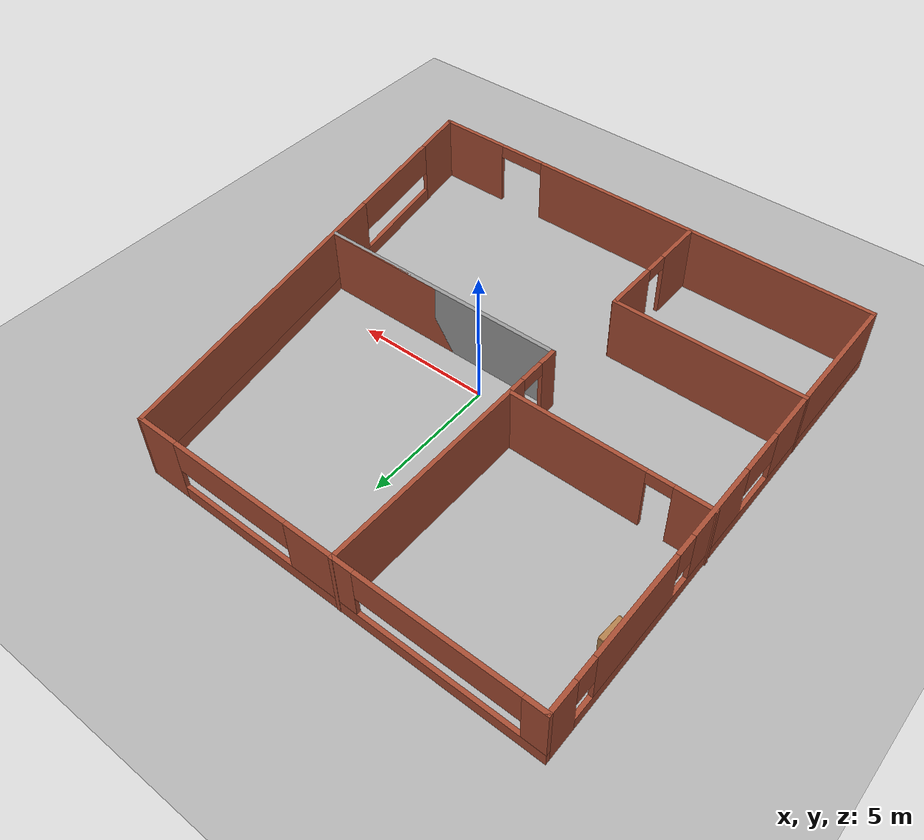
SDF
<sdf version="1.9">
 <world name="default">
  <gravity>0 0 -9.8</gravity>
  <magnetic_field>6e-06 2.3e-05 -4.2e-05</magnetic_field>
  <atmosphere type="adiabatic"/>
  <physics type="ode">
   <max_step_size>0.001</max_step_size>
   <real_time_factor>1</real_time_factor>
   <real_time_update_rate>1000</real_time_update_rate>
  </physics>
  <scene><ambient>0.4 0.4 0.4 1</ambient><background>0.7 0.7 0.7 1</background><shadows>true</shadows></scene>
  <model name="Dom">
   <pose>-0.232117 -0.096522 0 0 -0 0</pose>
   <link name="Wall_10">
    <collision name="Wall_10_Collision">
     <geometry><box><size>7 0.15 2.5</size></box></geometry>
     <pose>0 0 1.25 0 -0 0</pose>
    </collision>
    <visual name="Wall_10_Visual">
     <pose>0 0 1.25 0 -0 0</pose>
     <geometry><box><size>7 0.15 2.5</size></box></geometry>
     <material>
      <script><uri>file://media/materials/scripts/gazebo.material</uri><name>Gazebo/Bricks</name></script>
      <ambient>1 1 1 1</ambient>
     </material>
     <meta><layer>0</layer></meta>
    </visual>
    <pose>-5.49268 -4.10959 0 0 -0 0</pose>
    <inertial>
     <mass>1</mass>
     <inertia><ixx>1</ixx><ixy>0</ixy><ixz>0</ixz><iyy>1</iyy><iyz>0</iyz><izz>1</izz></inertia>
    </inertial>
   </link>
   <link name="Wall_11">
    <pose>-2.05603 -6.4096 0 0 0 -1.5708</pose>
    <visual name="Wall_11_Visual_0">
     <pose>-1.3422 0 1.25 0 -0 0</pose>
     <geometry><box><size>2.06559 0.15 2.5</size></box></geometry>
     <material>
      <script><uri>file://media/materials/scripts/gazebo.material</uri><name>Gazebo/Bricks</name></script>
      <ambient>1 1 1 1</ambient>
     </material>
     <meta><layer>0</layer></meta>
    </visual>
    <collision name="Wall_11_Collision_0">
     <geometry><box><size>2.06559 0.15 2.5</size></box></geometry>
     <pose>-1.3422 0 1.25 0 -0 0</pose>
    </collision>
    <visual name="Wall_11_Visual_1">
     <pose>1.4828 0 1.25 0 -0 0</pose>
     <geometry><box><size>1.78441 0.15 2.5</size></box></geometry>
     <material>
      <script><uri>file://media/materials/scripts/gazebo.material</uri><name>Gazebo/Bricks</name></script>
      <ambient>1 1 1 1</ambient>
     </material>
     <meta><layer>0</layer></meta>
    </visual>
    <collision name="Wall_11_Collision_1">
     <geometry><box><size>1.78441 0.15 2.5</size></box></geometry>
     <pose>1.4828 0 1.25 0 -0 0</pose>
    </collision>
    <visual name="Wall_11_Visual_2">
     <pose>0.140593 0 2.25 0 -0 0</pose>
     <geometry><box><size>0.9 0.15 0.5</size></box></geometry>
     <material>
      <script><uri>file://media/materials/scripts/gazebo.material</uri><name>Gazebo/Bricks</name></script>
      <ambient>1 1 1 1</ambient>
     </material>
     <meta><layer>0</layer></meta>
    </visual>
    <collision name="Wall_11_Collision_2">
     <geometry><box><size>0.9 0.15 0.5</size></box></geometry>
     <pose>0.140593 0 2.25 0 -0 0</pose>
    </collision>
    <inertial>
     <mass>1</mass>
     <inertia><ixx>1</ixx><ixy>0</ixy><ixz>0</ixz><iyy>1</iyy><iyz>0</iyz><izz>1</izz></inertia>
    </inertial>
   </link>
   <link name="Wall_13">
    <collision name="Wall_13_Collision">
     <geometry><box><size>9.5 0.15 2.5</size></box></geometry>
     <pose>0 0 1.25 0 -0 0</pose>
    </collision>
    <visual name="Wall_13_Visual">
     <pose>0 0 1.25 0 -0 0</pose>
     <geometry><box><size>9.5 0.15 2.5</size></box></geometry>
     <material>
      <script><uri>file://media/materials/scripts/gazebo.material</uri><name>Gazebo/Bricks</name></script>
      <ambient>1 1 1 1</ambient>
     </material>
     <meta><layer>0</layer></meta>
    </visual>
    <pose>2.83201 -0.959613 0 0 -0 0</pose>
    <inertial>
     <mass>1</mass>
     <inertia><ixx>1</ixx><ixy>0</ixy><ixz>0</ixz><iyy>1</iyy><iyz>0</iyz><izz>1</izz></inertia>
    </inertial>
   </link>
   <link name="Wall_14">
    <collision name="Wall_14_Collision">
     <geometry><box><size>9.5 0.15 2.5</size></box></geometry>
     <pose>0 0 1.25 0 -0 0</pose>
    </collision>
    <visual name="Wall_14_Visual">
     <pose>0 0 1.25 0 -0 0</pose>
     <geometry><box><size>9.5 0.15 2.5</size></box></geometry>
     <material>
      <script><uri>file://media/materials/scripts/gazebo.material</uri><name>Gazebo/Grey</name></script>
      <ambient>1 1 1 1</ambient>
     </material>
     <meta><layer>0</layer></meta>
    </visual>
    <pose>2.83201 -0.959613 0 0 -0 3.14159</pose>
    <inertial>
     <mass>1</mass>
     <inertia><ixx>1</ixx><ixy>0</ixy><ixz>0</ixz><iyy>1</iyy><iyz>0</iyz><izz>1</izz></inertia>
    </inertial>
   </link>
   <link name="Wall_15">
    <pose>-1.85066 0.090387 0 0 -0 1.5708</pose>
    <visual name="Wall_15_Visual_0">
     <pose>-0.773124 0 1.25 0 -0 0</pose>
     <geometry><box><size>0.703752 0.15 2.5</size></box></geometry>
     <material>
      <script><uri>file://media/materials/scripts/gazebo.material</uri><name>Gazebo/Bricks</name></script>
      <ambient>1 1 1 1</ambient>
     </material>
     <meta><layer>0</layer></meta>
    </visual>
    <collision name="Wall_15_Collision_0">
     <geometry><box><size>0.703752 0.15 2.5</size></box></geometry>
     <pose>-0.773124 0 1.25 0 -0 0</pose>
    </collision>
    <visual name="Wall_15_Visual_1">
     <pose>0.801876 0 1.25 0 -0 0</pose>
     <geometry><box><size>0.646248 0.15 2.5</size></box></geometry>
     <material>
      <script><uri>file://media/materials/scripts/gazebo.material</uri><name>Gazebo/Bricks</name></script>
      <ambient>1 1 1 1</ambient>
     </material>
     <meta><layer>0</layer></meta>
    </visual>
    <collision name="Wall_15_Collision_1">
     <geometry><box><size>0.646248 0.15 2.5</size></box></geometry>
     <pose>0.801876 0 1.25 0 -0 0</pose>
    </collision>
    <visual name="Wall_15_Visual_2">
     <pose>0.028752 0 2.25 0 -0 0</pose>
     <geometry><box><size>0.9 0.15 0.5</size></box></geometry>
     <material>
      <script><uri>file://media/materials/scripts/gazebo.material</uri><name>Gazebo/Bricks</name></script>
      <ambient>1 1 1 1</ambient>
     </material>
     <meta><layer>0</layer></meta>
    </visual>
    <collision name="Wall_15_Collision_2">
     <geometry><box><size>0.9 0.15 0.5</size></box></geometry>
     <pose>0.028752 0 2.25 0 -0 0</pose>
    </collision>
    <inertial>
     <mass>1</mass>
     <inertia><ixx>1</ixx><ixy>0</ixy><ixz>0</ixz><iyy>1</iyy><iyz>0</iyz><izz>1</izz></inertia>
    </inertial>
   </link>
   <link name="Wall_2">
    <pose>-1.48545 8.8 0 0 -0 3.14159</pose>
    <visual name="Wall_2_Visual_0">
     <pose>-6.70585 0 1.25 0 -0 0</pose>
     <geometry><box><size>1.5883 0.15 2.5</size></box></geometry>
     <material>
      <script><uri>file://media/materials/scripts/gazebo.material</uri><name>Gazebo/Bricks</name></script>
      <ambient>1 1 1 1</ambient>
     </material>
     <meta><layer>0</layer></meta>
    </visual>
    <collision name="Wall_2_Collision_0">
     <geometry><box><size>1.5883 0.15 2.5</size></box></geometry>
     <pose>-6.70585 0 1.25 0 -0 0</pose>
    </collision>
    <visual name="Wall_2_Visual_1">
     <pose>0.794151 0 0.25 0 -0 0</pose>
     <geometry><box><size>13.4117 0.15 0.5</size></box></geometry>
     <material>
      <script><uri>file://media/materials/scripts/gazebo.material</uri><name>Gazebo/Bricks</name></script>
      <ambient>1 1 1 1</ambient>
     </material>
     <meta><layer>0</layer></meta>
    </visual>
    <collision name="Wall_2_Collision_1">
     <geometry><box><size>13.4117 0.15 0.5</size></box></geometry>
     <pose>0.794151 0 0.25 0 -0 0</pose>
    </collision>
    <visual name="Wall_2_Visual_2">
     <pose>-0.160421 0 1.5 0 -0 0</pose>
     <geometry><box><size>2.52124 0.15 2</size></box></geometry>
     <material>
      <script><uri>file://media/materials/scripts/gazebo.material</uri><name>Gazebo/Bricks</name></script>
      <ambient>1 1 1 1</ambient>
     </material>
     <meta><layer>0</layer></meta>
    </visual>
    <collision name="Wall_2_Collision_2">
     <geometry><box><size>2.52124 0.15 2</size></box></geometry>
     <pose>-0.160421 0 1.5 0 -0 0</pose>
    </collision>
    <visual name="Wall_2_Visual_3">
     <pose>7.08941 0 1.5 0 -0 0</pose>
     <geometry><box><size>0.821169 0.15 2</size></box></geometry>
     <material>
      <script><uri>file://media/materials/scripts/gazebo.material</uri><name>Gazebo/Bricks</name></script>
      <ambient>1 1 1 1</ambient>
     </material>
     <meta><layer>0</layer></meta>
    </visual>
    <collision name="Wall_2_Collision_3">
     <geometry><box><size>0.821169 0.15 2</size></box></geometry>
     <pose>7.08941 0 1.5 0 -0 0</pose>
    </collision>
    <visual name="Wall_2_Visual_4">
     <pose>-3.66637 0 1.9 0 -0 0</pose>
     <geometry><box><size>4.49066 0.15 1.2</size></box></geometry>
     <material>
      <script><uri>file://media/materials/scripts/gazebo.material</uri><name>Gazebo/Bricks</name></script>
      <ambient>1 1 1 1</ambient>
     </material>
     <meta><layer>0</layer></meta>
    </visual>
    <collision name="Wall_2_Collision_4">
     <geometry><box><size>4.49066 0.15 1.2</size></box></geometry>
     <pose>-3.66637 0 1.9 0 -0 0</pose>
    </collision>
    <visual name="Wall_2_Visual_5">
     <pose>3.88951 0 1.9 0 -0 0</pose>
     <geometry><box><size>5.57863 0.15 1.2</size></box></geometry>
     <material>
      <script><uri>file://media/materials/scripts/gazebo.material</uri><name>Gazebo/Bricks</name></script>
      <ambient>1 1 1 1</ambient>
     </material>
     <meta><layer>0</layer></meta>
    </visual>
    <collision name="Wall_2_Collision_5">
     <geometry><box><size>5.57863 0.15 1.2</size></box></geometry>
     <pose>3.88951 0 1.9 0 -0 0</pose>
    </collision>
    <inertial>
     <mass>1</mass>
     <inertia><ixx>1</ixx><ixy>0</ixy><ixz>0</ixz><iyy>1</iyy><iyz>0</iyz><izz>1</izz></inertia>
    </inertial>
   </link>
   <link name="Wall_3">
    <pose>-8.91045 0 0 0 0 -1.5708</pose>
    <visual name="Wall_3_Visual_0">
     <pose>-8.27966 0 1.25 0 -0 0</pose>
     <geometry><box><size>1.19069 0.15 2.5</size></box></geometry>
     <material>
      <script><uri>file://media/materials/scripts/gazebo.material</uri><name>Gazebo/Bricks</name></script>
      <ambient>1 1 1 1</ambient>
     </material>
     <meta><layer>0</layer></meta>
    </visual>
    <collision name="Wall_3_Collision_0">
     <geometry><box><size>1.19069 0.15 2.5</size></box></geometry>
     <pose>-8.27966 0 1.25 0 -0 0</pose>
    </collision>
    <visual name="Wall_3_Visual_1">
     <pose>0.595344 0 0.25 0 -0 0</pose>
     <geometry><box><size>16.5593 0.15 0.5</size></box></geometry>
     <material>
      <script><uri>file://media/materials/scripts/gazebo.material</uri><name>Gazebo/Bricks</name></script>
      <ambient>1 1 1 1</ambient>
     </material>
     <meta><layer>0</layer></meta>
    </visual>
    <collision name="Wall_3_Collision_1">
     <geometry><box><size>16.5593 0.15 0.5</size></box></geometry>
     <pose>0.595344 0 0.25 0 -0 0</pose>
    </collision>
    <visual name="Wall_3_Visual_2">
     <pose>-4.98614 0 1.5 0 -0 0</pose>
     <geometry><box><size>3.79634 0.15 2</size></box></geometry>
     <material>
      <script><uri>file://media/materials/scripts/gazebo.material</uri><name>Gazebo/Bricks</name></script>
      <ambient>1 1 1 1</ambient>
     </material>
     <meta><layer>0</layer></meta>
    </visual>
    <collision name="Wall_3_Collision_2">
     <geometry><box><size>3.79634 0.15 2</size></box></geometry>
     <pose>-4.98614 0 1.5 0 -0 0</pose>
    </collision>
    <visual name="Wall_3_Visual_3">
     <pose>-0.847856 0 1.5 0 -0 0</pose>
     <geometry><box><size>2.88024 0.15 2</size></box></geometry>
     <material>
      <script><uri>file://media/materials/scripts/gazebo.material</uri><name>Gazebo/Bricks</name></script>
      <ambient>1 1 1 1</ambient>
     </material>
     <meta><layer>0</layer></meta>
    </visual>
    <collision name="Wall_3_Collision_3">
     <geometry><box><size>2.88024 0.15 2</size></box></geometry>
     <pose>-0.847856 0 1.5 0 -0 0</pose>
    </collision>
    <visual name="Wall_3_Visual_4">
     <pose>5.5783 0 1.5 0 -0 0</pose>
     <geometry><box><size>6.5934 0.15 2</size></box></geometry>
     <material>
      <script><uri>file://media/materials/scripts/gazebo.material</uri><name>Gazebo/Bricks</name></script>
      <ambient>1 1 1 1</ambient>
     </material>
     <meta><layer>0</layer></meta>
    </visual>
    <collision name="Wall_3_Collision_4">
     <geometry><box><size>6.5934 0.15 2</size></box></geometry>
     <pose>5.5783 0 1.5 0 -0 0</pose>
    </collision>
    <visual name="Wall_3_Visual_5">
     <pose>-7.28431 0 1.9 0 -0 0</pose>
     <geometry><box><size>0.8 0.15 1.2</size></box></geometry>
     <material>
      <script><uri>file://media/materials/scripts/gazebo.material</uri><name>Gazebo/Bricks</name></script>
      <ambient>1 1 1 1</ambient>
     </material>
     <meta><layer>0</layer></meta>
    </visual>
    <collision name="Wall_3_Collision_5">
     <geometry><box><size>0.8 0.15 1.2</size></box></geometry>
     <pose>-7.28431 0 1.9 0 -0 0</pose>
    </collision>
    <visual name="Wall_3_Visual_6">
     <pose>-2.68798 0 1.9 0 -0 0</pose>
     <geometry><box><size>0.8 0.15 1.2</size></box></geometry>
     <material>
      <script><uri>file://media/materials/scripts/gazebo.material</uri><name>Gazebo/Bricks</name></script>
      <ambient>1 1 1 1</ambient>
     </material>
     <meta><layer>0</layer></meta>
    </visual>
    <collision name="Wall_3_Collision_6">
     <geometry><box><size>0.8 0.15 1.2</size></box></geometry>
     <pose>-2.68798 0 1.9 0 -0 0</pose>
    </collision>
    <visual name="Wall_3_Visual_7">
     <pose>1.43693 0 1.9 0 -0 0</pose>
     <geometry><box><size>1.68933 0.15 1.2</size></box></geometry>
     <material>
      <script><uri>file://media/materials/scripts/gazebo.material</uri><name>Gazebo/Bricks</name></script>
      <ambient>1 1 1 1</ambient>
     </material>
     <meta><layer>0</layer></meta>
    </visual>
    <collision name="Wall_3_Collision_7">
     <geometry><box><size>1.68933 0.15 1.2</size></box></geometry>
     <pose>1.43693 0 1.9 0 -0 0</pose>
    </collision>
    <inertial>
     <mass>1</mass>
     <inertia><ixx>1</ixx><ixy>0</ixy><ixz>0</ixz><iyy>1</iyy><iyz>0</iyz><izz>1</izz></inertia>
    </inertial>
   </link>
   <link name="Wall_4">
    <pose>0.014548 -8.8 0 0 -0 0</pose>
    <visual name="Wall_4_Visual_0">
     <pose>-2.29717 0 1.25 0 -0 0</pose>
     <geometry><box><size>13.4057 0.15 2.5</size></box></geometry>
     <material>
      <script><uri>file://media/materials/scripts/gazebo.material</uri><name>Gazebo/Bricks</name></script>
      <ambient>1 1 1 1</ambient>
     </material>
     <meta><layer>0</layer></meta>
    </visual>
    <collision name="Wall_4_Collision_0">
     <geometry><box><size>13.4057 0.15 2.5</size></box></geometry>
     <pose>-2.29717 0 1.25 0 -0 0</pose>
    </collision>
    <visual name="Wall_4_Visual_1">
     <pose>7.61603 0 1.25 0 -0 0</pose>
     <geometry><box><size>2.76795 0.15 2.5</size></box></geometry>
     <material>
      <script><uri>file://media/materials/scripts/gazebo.material</uri><name>Gazebo/Bricks</name></script>
      <ambient>1 1 1 1</ambient>
     </material>
     <meta><layer>0</layer></meta>
    </visual>
    <collision name="Wall_4_Collision_1">
     <geometry><box><size>2.76795 0.15 2.5</size></box></geometry>
     <pose>7.61603 0 1.25 0 -0 0</pose>
    </collision>
    <visual name="Wall_4_Visual_2">
     <pose>5.31886 0 2.25 0 -0 0</pose>
     <geometry><box><size>1.82639 0.15 0.5</size></box></geometry>
     <material>
      <script><uri>file://media/materials/scripts/gazebo.material</uri><name>Gazebo/Bricks</name></script>
      <ambient>1 1 1 1</ambient>
     </material>
     <meta><layer>0</layer></meta>
    </visual>
    <collision name="Wall_4_Collision_2">
     <geometry><box><size>1.82639 0.15 0.5</size></box></geometry>
     <pose>5.31886 0 2.25 0 -0 0</pose>
    </collision>
    <inertial>
     <mass>1</mass>
     <inertia><ixx>1</ixx><ixy>0</ixy><ixz>0</ixz><iyy>1</iyy><iyz>0</iyz><izz>1</izz></inertia>
    </inertial>
   </link>
   <link name="Wall_5">
    <pose>7.43955 0 0 0 -0 1.73963</pose>
    <visual name="Wall_5_Visual_0">
     <pose>-7.98059 0 1.25 0 -0 0</pose>
     <geometry><box><size>2.04267 0.15 2.5</size></box></geometry>
     <material>
      <script><uri>file://media/materials/scripts/gazebo.material</uri><name>Gazebo/Bricks</name></script>
      <ambient>1 1 1 1</ambient>
     </material>
     <meta><layer>0</layer></meta>
    </visual>
    <collision name="Wall_5_Collision_0">
     <geometry><box><size>2.04267 0.15 2.5</size></box></geometry>
     <pose>-7.98059 0 1.25 0 -0 0</pose>
    </collision>
    <visual name="Wall_5_Visual_1">
     <pose>1.02133 0 0.25 0 -0 0</pose>
     <geometry><box><size>15.9612 0.15 0.5</size></box></geometry>
     <material>
      <script><uri>file://media/materials/scripts/gazebo.material</uri><name>Gazebo/Bricks</name></script>
      <ambient>1 1 1 1</ambient>
     </material>
     <meta><layer>0</layer></meta>
    </visual>
    <collision name="Wall_5_Collision_1">
     <geometry><box><size>15.9612 0.15 0.5</size></box></geometry>
     <pose>1.02133 0 0.25 0 -0 0</pose>
    </collision>
    <visual name="Wall_5_Visual_2">
     <pose>3.06405 0 1.5 0 -0 0</pose>
     <geometry><box><size>11.8758 0.15 2</size></box></geometry>
     <material>
      <script><uri>file://media/materials/scripts/gazebo.material</uri><name>Gazebo/Bricks</name></script>
      <ambient>1 1 1 1</ambient>
     </material>
     <meta><layer>0</layer></meta>
    </visual>
    <collision name="Wall_5_Collision_2">
     <geometry><box><size>11.8758 0.15 2</size></box></geometry>
     <pose>3.06405 0 1.5 0 -0 0</pose>
    </collision>
    <visual name="Wall_5_Visual_3">
     <pose>-4.91655 0 1.9 0 -0 0</pose>
     <geometry><box><size>4.08542 0.15 1.2</size></box></geometry>
     <material>
      <script><uri>file://media/materials/scripts/gazebo.material</uri><name>Gazebo/Bricks</name></script>
      <ambient>1 1 1 1</ambient>
     </material>
     <meta><layer>0</layer></meta>
    </visual>
    <collision name="Wall_5_Collision_3">
     <geometry><box><size>4.08542 0.15 1.2</size></box></geometry>
     <pose>-4.91655 0 1.9 0 -0 0</pose>
    </collision>
    <inertial>
     <mass>1</mass>
     <inertia><ixx>1</ixx><ixy>0</ixy><ixz>0</ixz><iyy>1</iyy><iyz>0</iyz><izz>1</izz></inertia>
    </inertial>
   </link>
   <link name="Wall_7">
    <collision name="Wall_7_Collision">
     <geometry><box><size>7.75 0.15 2.5</size></box></geometry>
     <pose>0 0 1.25 0 -0 0</pose>
    </collision>
    <visual name="Wall_7_Visual">
     <pose>0 0 1.25 0 -0 0</pose>
     <geometry><box><size>7.75 0.15 2.5</size></box></geometry>
     <material>
      <script><uri>file://media/materials/scripts/gazebo.material</uri><name>Gazebo/Bricks</name></script>
      <ambient>1 1 1 1</ambient>
     </material>
     <meta><layer>0</layer></meta>
    </visual>
    <pose>-1.85108 5.00859 0 0 0 -1.5708</pose>
    <inertial>
     <mass>1</mass>
     <inertia><ixx>1</ixx><ixy>0</ixy><ixz>0</ixz><iyy>1</iyy><iyz>0</iyz><izz>1</izz></inertia>
    </inertial>
   </link>
   <link name="Wall_8">
    <pose>-5.40108 1.20859 0 0 -0 3.14159</pose>
    <visual name="Wall_8_Visual_0">
     <pose>-1.14934 0 1.25 0 -0 0</pose>
     <geometry><box><size>4.95132 0.15 2.5</size></box></geometry>
     <material>
      <script><uri>file://media/materials/scripts/gazebo.material</uri><name>Gazebo/Bricks</name></script>
      <ambient>1 1 1 1</ambient>
     </material>
     <meta><layer>0</layer></meta>
    </visual>
    <collision name="Wall_8_Collision_0">
     <geometry><box><size>4.95132 0.15 2.5</size></box></geometry>
     <pose>-1.14934 0 1.25 0 -0 0</pose>
    </collision>
    <visual name="Wall_8_Visual_1">
     <pose>2.92566 0 1.25 0 -0 0</pose>
     <geometry><box><size>1.39867 0.15 2.5</size></box></geometry>
     <material>
      <script><uri>file://media/materials/scripts/gazebo.material</uri><name>Gazebo/Bricks</name></script>
      <ambient>1 1 1 1</ambient>
     </material>
     <meta><layer>0</layer></meta>
    </visual>
    <collision name="Wall_8_Collision_1">
     <geometry><box><size>1.39867 0.15 2.5</size></box></geometry>
     <pose>2.92566 0 1.25 0 -0 0</pose>
    </collision>
    <visual name="Wall_8_Visual_2">
     <pose>1.77632 0 2.25 0 -0 0</pose>
     <geometry><box><size>0.9 0.15 0.5</size></box></geometry>
     <material>
      <script><uri>file://media/materials/scripts/gazebo.material</uri><name>Gazebo/Bricks</name></script>
      <ambient>1 1 1 1</ambient>
     </material>
     <meta><layer>0</layer></meta>
    </visual>
    <collision name="Wall_8_Collision_2">
     <geometry><box><size>0.9 0.15 0.5</size></box></geometry>
     <pose>1.77632 0 2.25 0 -0 0</pose>
    </collision>
    <inertial>
     <mass>1</mass>
     <inertia><ixx>1</ixx><ixy>0</ixy><ixz>0</ixz><iyy>1</iyy><iyz>0</iyz><izz>1</izz></inertia>
    </inertial>
   </link>
   <static>true</static>
  </model>
  <model name="ground_plane">
   <static>true</static>
   <link name="link">
    <collision name="collision">
     <geometry><plane><normal>0 0 1</normal><size>100 100</size></plane></geometry>
     <surface><friction><ode><mu>100</mu><mu2>50</mu2></ode></friction></surface>
    </collision>
    <visual name="visual">
     <cast_shadows>false</cast_shadows>
     <geometry><plane><normal>0 0 1</normal><size>100 100</size></plane></geometry>
     <material>
      <ambient>0.3 0.3 0.3 1</ambient>
      <diffuse>0.7 0.7 0.7 1</diffuse>
      <specular>0.01 0.01 0.01 1</specular>
     </material>
    </visual>
    <inertial>
     <mass>1</mass>
     <inertia><ixx>1</ixx><ixy>0</ixy><ixz>0</ixz><iyy>1</iyy><iyz>0</iyz><izz>1</izz></inertia>
    </inertial>
   </link>
   <pose>-2.79156 -3.50145 0 0 -0 0</pose>
  </model>
  <model name="Bookshelf">
   <static>true</static>
   <link name="link">
    <inertial>
     <mass>1</mass>
     <inertia><ixx>1</ixx><ixy>0</ixy><ixz>0</ixz><iyy>1</iyy><iyz>0</iyz><izz>1</izz></inertia>
    </inertial>
    <collision name="back">
     <pose>0 0.005 0.6 0 0 0</pose>
     <geometry><box><size>0.9 0.01 1.2</size></box></geometry>
    </collision>
    <visual name="visual1">
     <pose>0 0.005 0.6 0 0 0</pose>
     <geometry><box><size>0.9 0.01 1.2</size></box></geometry>
     <material>
      <diffuse>1 1 1 1</diffuse>
      <script><uri>file://media/materials/scripts/gazebo.material</uri><name>Gazebo/Wood</name></script>
      <pbr>
       <metal>
        <albedo_map>https://fuel.gazebosim.org/1.0/openrobotics/models/bookshelf/4/files/bookshelf_diffuse.jpg</albedo_map>
       </metal>
      </pbr>
     </material>
    </visual>
    <collision name="left_side">
     <pose>0.45 -0.195 0.6 0 0 0</pose>
     <geometry><box><size>0.02 0.4 1.2</size></box></geometry>
    </collision>
    <visual name="visual2">
     <pose>0.45 -0.195 0.6 0 0 0</pose>
     <geometry><box><size>0.02 0.4 1.2</size></box></geometry>
     <material>
      <diffuse>1 1 1 1</diffuse>
      <script><uri>file://media/materials/scripts/gazebo.material</uri><name>Gazebo/Wood</name></script>
      <pbr>
       <metal>
        <albedo_map>https://fuel.gazebosim.org/1.0/openrobotics/models/bookshelf/4/files/bookshelf_diffuse.jpg</albedo_map>
       </metal>
      </pbr>
     </material>
    </visual>
    <collision name="right_side">
     <pose>-0.45 -0.195 0.6 0 0 0</pose>
     <geometry><box><size>0.02 0.4 1.2</size></box></geometry>
    </collision>
    <visual name="visual3">
     <pose>-0.45 -0.195 0.6 0 0 0</pose>
     <geometry><box><size>0.02 0.4 1.2</size></box></geometry>
     <material>
      <diffuse>1 1 1 1</diffuse>
      <script><uri>file://media/materials/scripts/gazebo.material</uri><name>Gazebo/Wood</name></script>
      <pbr>
       <metal>
        <albedo_map>https://fuel.gazebosim.org/1.0/openrobotics/models/bookshelf/4/files/bookshelf_diffuse.jpg</albedo_map>
       </metal>
      </pbr>
     </material>
    </visual>
    <collision name="bottom">
     <pose>0 -0.195 0.03 0 0 0</pose>
     <geometry><box><size>0.88 0.4 0.06</size></box></geometry>
    </collision>
    <visual name="visual4">
     <pose>0 -0.195 0.03 0 0 0</pose>
     <geometry><box><size>0.88 0.4 0.06</size></box></geometry>
     <material>
      <diffuse>1 1 1 1</diffuse>
      <script><uri>file://media/materials/scripts/gazebo.material</uri><name>Gazebo/Wood</name></script>
      <pbr>
       <metal>
        <albedo_map>https://fuel.gazebosim.org/1.0/openrobotics/models/bookshelf/4/files/bookshelf_diffuse.jpg</albedo_map>
       </metal>
      </pbr>
     </material>
    </visual>
    <collision name="top">
     <pose>0 -0.195 1.19 0 0 0</pose>
     <geometry><box><size>0.88 0.4 0.02</size></box></geometry>
    </collision>
    <visual name="visual5">
     <pose>0 -0.195 1.19 0 0 0</pose>
     <geometry><box><size>0.88 0.4 0.02</size></box></geometry>
     <material>
      <diffuse>1 1 1 1</diffuse>
      <script><uri>file://media/materials/scripts/gazebo.material</uri><name>Gazebo/Wood</name></script>
      <pbr>
       <metal>
        <albedo_map>https://fuel.gazebosim.org/1.0/openrobotics/models/bookshelf/4/files/bookshelf_diffuse.jpg</albedo_map>
       </metal>
      </pbr>
     </material>
    </visual>
    <collision name="low_shelf">
     <pose>0 -0.195 0.43 0 0 0</pose>
     <geometry><box><size>0.88 0.4 0.02</size></box></geometry>
    </collision>
    <visual name="visual6">
     <pose>0 -0.195 0.43 0 0 0</pose>
     <geometry><box><size>0.88 0.4 0.02</size></box></geometry>
     <material>
      <diffuse>1 1 1 1</diffuse>
      <script><uri>file://media/materials/scripts/gazebo.material</uri><name>Gazebo/Wood</name></script>
      <pbr>
       <metal>
        <albedo_map>https://fuel.gazebosim.org/1.0/openrobotics/models/bookshelf/4/files/bookshelf_diffuse.jpg</albedo_map>
       </metal>
      </pbr>
     </material>
    </visual>
    <collision name="high_shelf">
     <pose>0 -0.195 0.8 0 0 0</pose>
     <geometry><box><size>0.88 0.4 0.02</size></box></geometry>
    </collision>
    <visual name="visual7">
     <pose>0 -0.195 0.8 0 0 0</pose>
     <geometry><box><size>0.88 0.4 0.02</size></box></geometry>
     <material>
      <diffuse>1 1 1 1</diffuse>
      <script><uri>file://media/materials/scripts/gazebo.material</uri><name>Gazebo/Wood</name></script>
      <pbr>
       <metal>
        <albedo_map>https://fuel.gazebosim.org/1.0/openrobotics/models/bookshelf/4/files/bookshelf_diffuse.jpg</albedo_map>
       </metal>
      </pbr>
     </material>
    </visual>
   </link>
   <pose>-8.56852 5.19128 0 0 0 -1.63318</pose>
  </model>
 </world>
</sdf>
